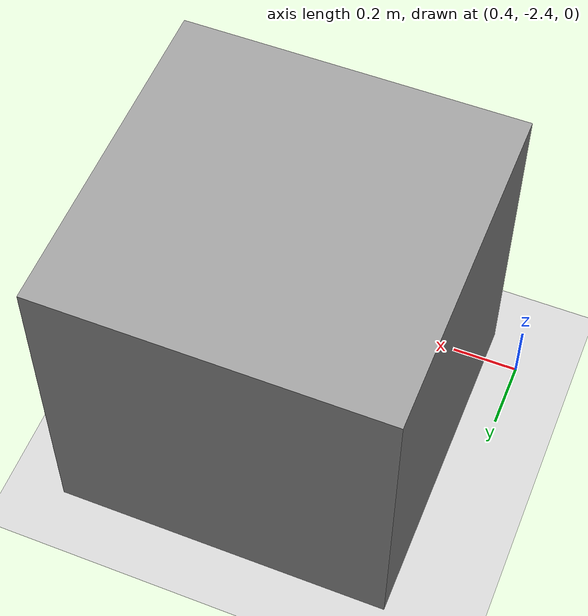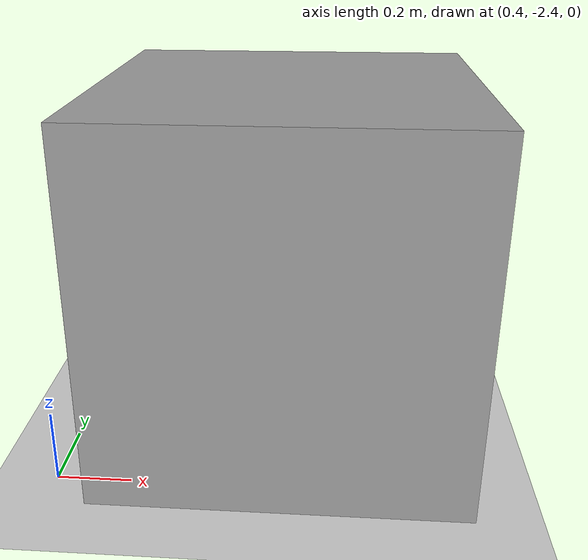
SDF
<sdf version="1.5">
 <world name="default">
  <plugin filename="libball_throwing.so" name="ball_throwing">
   <atlas><model_name>atlas</model_name><pin_link>utorso</pin_link></atlas>
   <drc_vehicle><model_name>golf_cart</model_name><seat_link>chassis</seat_link></drc_vehicle>
   <drc_fire_hose>
    <fire_hose_model>fire_hose</fire_hose_model>
    <coupling_link>coupling</coupling_link>
    <standpipe_model>standpipe</standpipe_model>
    <spout_link>standpipe</spout_link>
    <thread_pitch>-1000</thread_pitch>
    <coupling_relative_pose>1.17038e-05 -0.125623 0.35 -0.0412152 -1.57078 1.61199</coupling_relative_pose>
   </drc_fire_hose>
  </plugin>
  <light name="sun" type="directional">
   <pose>0 0 10 0 -0 0</pose>
   <diffuse>0.8 0.8 0.8 1</diffuse>
   <specular>0.2 0.2 0.2 1</specular>
   <attenuation>
    <range>1000</range>
    <constant>0.9</constant>
    <linear>0.01</linear>
    <quadratic>0.001</quadratic>
   </attenuation>
   <direction>-0.5 0.1 -0.9</direction>
  </light>
  <model name="ground_plane">
   <static>1</static>
   <link name="link">
    <collision name="collision">
     <geometry><plane><normal>0 0 1</normal><size>100 100</size></plane></geometry>
     <surface><friction><ode><mu>100</mu><mu2>50</mu2></ode></friction></surface>
    </collision>
    <visual name="visual">
     <cast_shadows>0</cast_shadows>
     <geometry><plane><normal>0 0 1</normal><size>100 100</size></plane></geometry>
     <material>
      <script><uri>file://media/materials/scripts/gazebo.material</uri><name>Gazebo/Grey</name></script>
     </material>
    </visual>
   </link>
  </model>
  <physics name="default_physics" default="0" type="ode">
   <max_step_size>0.001</max_step_size>
   <real_time_factor>1</real_time_factor>
   <real_time_update_rate>1000</real_time_update_rate>
   <gravity>0 0 -9.8</gravity>
   <magnetic_field>5.5645e-06 2.28758e-05 -4.23884e-05</magnetic_field>
  </physics>
  <scene><ambient>0.4 0.4 0.4 1</ambient><background>0.7 0.7 0.7 1</background><shadows>1</shadows></scene>
  <spherical_coordinates>
   <surface_model>EARTH_WGS84</surface_model>
   <latitude_deg>0</latitude_deg>
   <longitude_deg>0</longitude_deg>
   <elevation>0</elevation>
   <heading_deg>0</heading_deg>
  </spherical_coordinates>
  <model name="unit_box_1">
   <pose>1 -2 0.5 0 -0 0</pose>
   <link name="link">
    <inertial>
     <mass>1</mass>
     <inertia><ixx>1</ixx><ixy>0</ixy><ixz>0</ixz><iyy>1</iyy><iyz>0</iyz><izz>1</izz></inertia>
    </inertial>
    <collision name="collision"><geometry><box><size>1 1 1</size></box></geometry></collision>
    <visual name="visual">
     <geometry><box><size>1 1 1</size></box></geometry>
     <material>
      <script><uri>file://media/materials/scripts/gazebo.material</uri><name>Gazebo/Grey</name></script>
     </material>
    </visual>
   </link>
  </model>
 </world>
</sdf>
